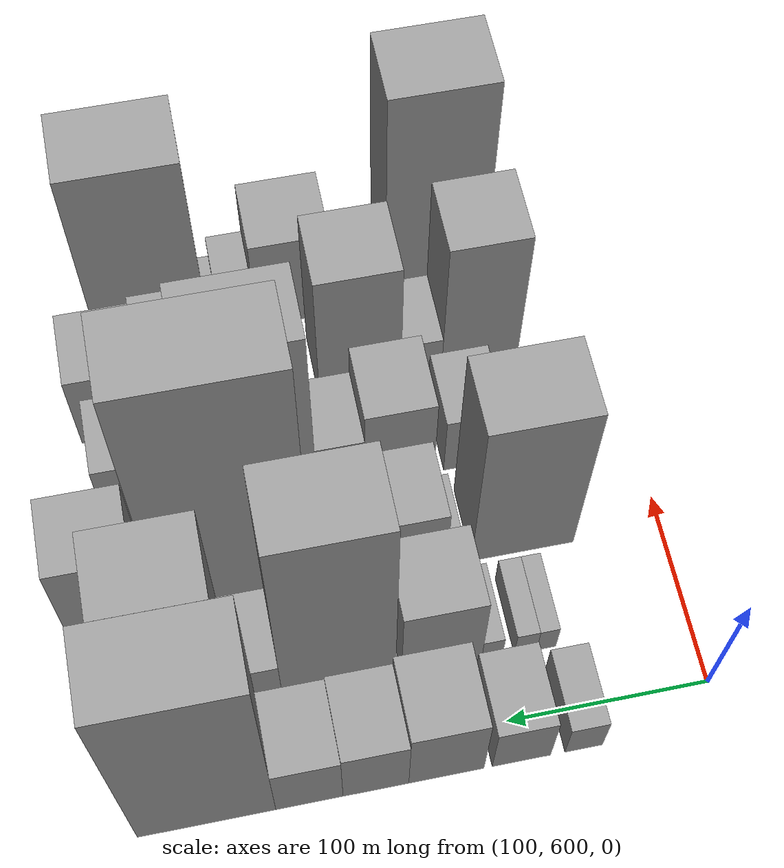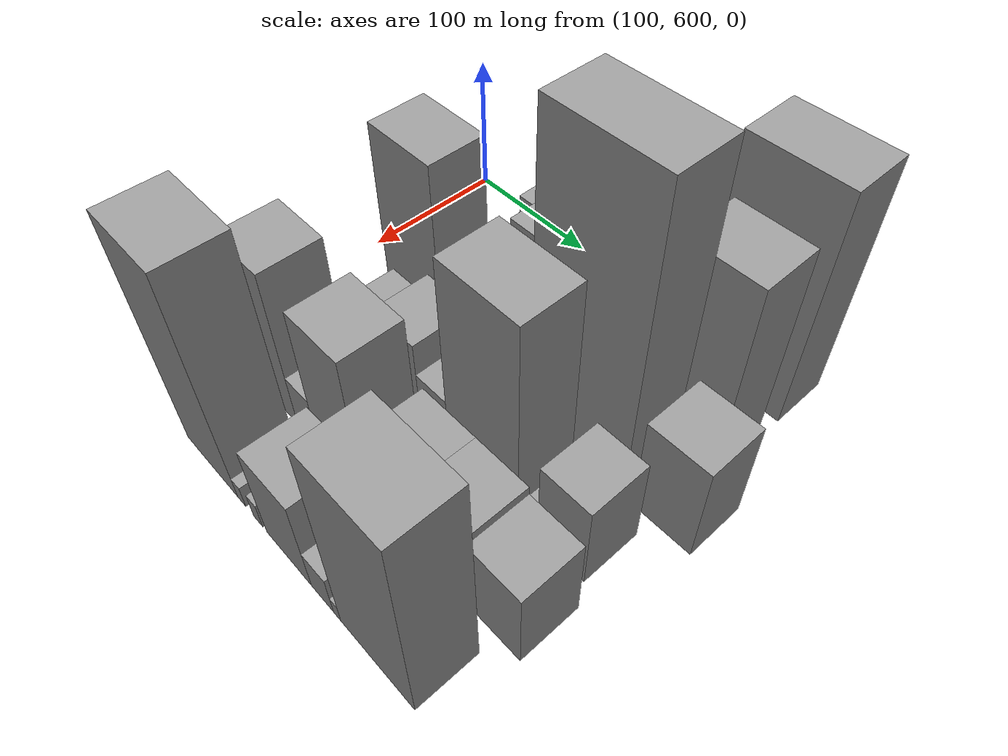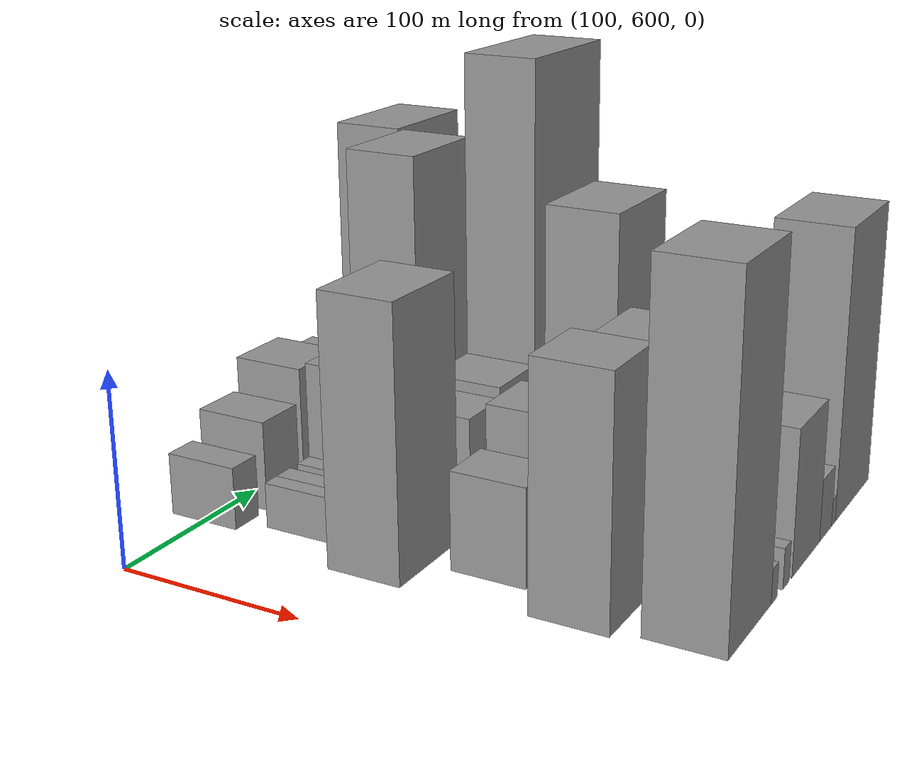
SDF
<sdf version="1.6">
 <world name="default">
  <model name="building_48">
   <static>1</static>
   <pose>100.0000 667.2027 0 0.000000 0.000000 0.000000</pose>
   <link name="link">
    <pose>0 0 16.50 0 0 0</pose>
    <collision name="collision"><geometry><box><size>40.0000 18.4036 33.0000</size></box></geometry></collision>
    <visual name="visual">
     <cast_shadows>0</cast_shadows>
     <geometry><box><size>40.0000 18.4036 33.0000</size></box></geometry>
     <material>
      <script>
       <uri>model://grey_wall/materials/scripts</uri>
       <uri>model://grey_wall/materials/textures</uri>
       <name>vrc/grey_wall</name>
      </script>
     </material>
    </visual>
   </link>
  </model>
  <model name="building_49">
   <static>1</static>
   <pose>100.0000 697.5780 0 0.000000 0.000000 0.000000</pose>
   <link name="link">
    <pose>0 0 24.00 0 0 0</pose>
    <collision name="collision"><geometry><box><size>40.0000 28.3470 48.0000</size></box></geometry></collision>
    <visual name="visual">
     <cast_shadows>0</cast_shadows>
     <geometry><box><size>40.0000 28.3470 48.0000</size></box></geometry>
     <material>
      <script>
       <uri>model://grey_wall/materials/scripts</uri>
       <uri>model://grey_wall/materials/textures</uri>
       <name>vrc/grey_wall</name>
      </script>
     </material>
    </visual>
   </link>
  </model>
  <model name="building_50">
   <static>1</static>
   <pose>100.0000 733.8531 0 0.000000 0.000000 0.000000</pose>
   <link name="link">
    <pose>0 0 33.00 0 0 0</pose>
    <collision name="collision"><geometry><box><size>40.0000 36.2032 66.0000</size></box></geometry></collision>
    <visual name="visual">
     <cast_shadows>0</cast_shadows>
     <geometry><box><size>40.0000 36.2032 66.0000</size></box></geometry>
     <material>
      <script>
       <uri>model://grey_wall/materials/scripts</uri>
       <uri>model://grey_wall/materials/textures</uri>
       <name>vrc/grey_wall</name>
      </script>
     </material>
    </visual>
   </link>
  </model>
  <model name="building_51">
   <static>1</static>
   <pose>100.0000 767.6744 0 0.000000 0.000000 0.000000</pose>
   <link name="link">
    <pose>0 0 28.50 0 0 0</pose>
    <collision name="collision"><geometry><box><size>40.0000 31.4392 57.0000</size></box></geometry></collision>
    <visual name="visual">
     <cast_shadows>0</cast_shadows>
     <geometry><box><size>40.0000 31.4392 57.0000</size></box></geometry>
     <material>
      <script>
       <uri>model://grey_wall/materials/scripts</uri>
       <uri>model://grey_wall/materials/textures</uri>
       <name>vrc/grey_wall</name>
      </script>
     </material>
    </visual>
   </link>
  </model>
  <model name="building_52">
   <static>1</static>
   <pose>100.0000 799.3085 0 0.000000 0.000000 0.000000</pose>
   <link name="link">
    <pose>0 0 27.00 0 0 0</pose>
    <collision name="collision"><geometry><box><size>40.0000 31.8290 54.0000</size></box></geometry></collision>
    <visual name="visual">
     <cast_shadows>0</cast_shadows>
     <geometry><box><size>40.0000 31.8290 54.0000</size></box></geometry>
     <material>
      <script>
       <uri>model://grey_wall/materials/scripts</uri>
       <uri>model://grey_wall/materials/textures</uri>
       <name>vrc/grey_wall</name>
      </script>
     </material>
    </visual>
   </link>
  </model>
  <model name="building_53">
   <static>1</static>
   <pose>100.0000 847.6762 0 0.000000 0.000000 0.000000</pose>
   <link name="link">
    <pose>0 0 87.00 0 0 0</pose>
    <collision name="collision"><geometry><box><size>40.0000 64.9065 174.0000</size></box></geometry></collision>
    <visual name="visual">
     <cast_shadows>0</cast_shadows>
     <geometry><box><size>40.0000 64.9065 174.0000</size></box></geometry>
     <material>
      <script>
       <uri>model://grey_wall/materials/scripts</uri>
       <uri>model://grey_wall/materials/textures</uri>
       <name>vrc/grey_wall</name>
      </script>
     </material>
    </visual>
   </link>
  </model>
  <model name="building_96">
   <static>1</static>
   <pose>152.0000 672.4310 0 0.000000 0.000000 0.000000</pose>
   <link name="link">
    <pose>0 0 12.00 0 0 0</pose>
    <collision name="collision"><geometry><box><size>40.0000 9.6453 24.0000</size></box></geometry></collision>
    <visual name="visual">
     <cast_shadows>0</cast_shadows>
     <geometry><box><size>40.0000 9.6453 24.0000</size></box></geometry>
     <material>
      <script>
       <uri>model://grey_wall/materials/scripts</uri>
       <uri>model://grey_wall/materials/textures</uri>
       <name>vrc/grey_wall</name>
      </script>
     </material>
    </visual>
   </link>
  </model>
  <model name="building_97">
   <static>1</static>
   <pose>152.0000 682.8885 0 0.000000 0.000000 0.000000</pose>
   <link name="link">
    <pose>0 0 12.00 0 0 0</pose>
    <collision name="collision"><geometry><box><size>40.0000 11.2697 24.0000</size></box></geometry></collision>
    <visual name="visual">
     <cast_shadows>0</cast_shadows>
     <geometry><box><size>40.0000 11.2697 24.0000</size></box></geometry>
     <material>
      <script>
       <uri>model://grey_wall/materials/scripts</uri>
       <uri>model://grey_wall/materials/textures</uri>
       <name>vrc/grey_wall</name>
      </script>
     </material>
    </visual>
   </link>
  </model>
  <model name="building_98">
   <static>1</static>
   <pose>152.0000 699.7544 0 0.000000 0.000000 0.000000</pose>
   <link name="link">
    <pose>0 0 12.00 0 0 0</pose>
    <collision name="collision"><geometry><box><size>40.0000 10.4621 24.0000</size></box></geometry></collision>
    <visual name="visual">
     <cast_shadows>0</cast_shadows>
     <geometry><box><size>40.0000 10.4621 24.0000</size></box></geometry>
     <material>
      <script>
       <uri>model://grey_wall/materials/scripts</uri>
       <uri>model://grey_wall/materials/textures</uri>
       <name>vrc/grey_wall</name>
      </script>
     </material>
    </visual>
   </link>
  </model>
  <model name="building_99">
   <static>1</static>
   <pose>152.0000 724.7930 0 0.000000 0.000000 0.000000</pose>
   <link name="link">
    <pose>0 0 37.50 0 0 0</pose>
    <collision name="collision"><geometry><box><size>40.0000 39.6151 75.0000</size></box></geometry></collision>
    <visual name="visual">
     <cast_shadows>0</cast_shadows>
     <geometry><box><size>40.0000 39.6151 75.0000</size></box></geometry>
     <material>
      <script>
       <uri>model://grey_wall/materials/scripts</uri>
       <uri>model://grey_wall/materials/textures</uri>
       <name>vrc/grey_wall</name>
      </script>
     </material>
    </visual>
   </link>
  </model>
  <model name="building_100">
   <static>1</static>
   <pose>152.0000 775.2341 0 0.000000 0.000000 0.000000</pose>
   <link name="link">
    <pose>0 0 88.50 0 0 0</pose>
    <collision name="collision"><geometry><box><size>40.0000 55.2671 177.0000</size></box></geometry></collision>
    <visual name="visual">
     <cast_shadows>0</cast_shadows>
     <geometry><box><size>40.0000 55.2671 177.0000</size></box></geometry>
     <material>
      <script>
       <uri>model://grey_wall/materials/scripts</uri>
       <uri>model://grey_wall/materials/textures</uri>
       <name>vrc/grey_wall</name>
      </script>
     </material>
    </visual>
   </link>
  </model>
  <model name="building_101">
   <static>1</static>
   <pose>152.0000 814.1956 0 0.000000 0.000000 0.000000</pose>
   <link name="link">
    <pose>0 0 22.50 0 0 0</pose>
    <collision name="collision"><geometry><box><size>40.0000 22.6560 45.0000</size></box></geometry></collision>
    <visual name="visual">
     <cast_shadows>0</cast_shadows>
     <geometry><box><size>40.0000 22.6560 45.0000</size></box></geometry>
     <material>
      <script>
       <uri>model://grey_wall/materials/scripts</uri>
       <uri>model://grey_wall/materials/textures</uri>
       <name>vrc/grey_wall</name>
      </script>
     </material>
    </visual>
   </link>
  </model>
  <model name="building_102">
   <static>1</static>
   <pose>152.0000 850.6613 0 0.000000 0.000000 0.000000</pose>
   <link name="link">
    <pose>0 0 72.00 0 0 0</pose>
    <collision name="collision"><geometry><box><size>40.0000 50.2754 144.0000</size></box></geometry></collision>
    <visual name="visual">
     <cast_shadows>0</cast_shadows>
     <geometry><box><size>40.0000 50.2754 144.0000</size></box></geometry>
     <material>
      <script>
       <uri>model://grey_wall/materials/scripts</uri>
       <uri>model://grey_wall/materials/textures</uri>
       <name>vrc/grey_wall</name>
      </script>
     </material>
    </visual>
   </link>
  </model>
  <model name="building_147">
   <static>1</static>
   <pose>204.0000 671.6703 0 0.000000 0.000000 0.000000</pose>
   <link name="link">
    <pose>0 0 69.00 0 0 0</pose>
    <collision name="collision"><geometry><box><size>40.0000 52.6367 138.0000</size></box></geometry></collision>
    <visual name="visual">
     <cast_shadows>0</cast_shadows>
     <geometry><box><size>40.0000 52.6367 138.0000</size></box></geometry>
     <material>
      <script>
       <uri>model://grey_wall/materials/scripts</uri>
       <uri>model://grey_wall/materials/textures</uri>
       <name>vrc/grey_wall</name>
      </script>
     </material>
    </visual>
   </link>
  </model>
  <model name="building_148">
   <static>1</static>
   <pose>204.0000 706.4081 0 0.000000 0.000000 0.000000</pose>
   <link name="link">
    <pose>0 0 10.50 0 0 0</pose>
    <collision name="collision"><geometry><box><size>40.0000 8.8390 21.0000</size></box></geometry></collision>
    <visual name="visual">
     <cast_shadows>0</cast_shadows>
     <geometry><box><size>40.0000 8.8390 21.0000</size></box></geometry>
     <material>
      <script>
       <uri>model://grey_wall/materials/scripts</uri>
       <uri>model://grey_wall/materials/textures</uri>
       <name>vrc/grey_wall</name>
      </script>
     </material>
    </visual>
   </link>
  </model>
  <model name="building_149">
   <static>1</static>
   <pose>204.0000 726.1357 0 0.000000 0.000000 0.000000</pose>
   <link name="link">
    <pose>0 0 30.00 0 0 0</pose>
    <collision name="collision"><geometry><box><size>40.0000 30.6161 60.0000</size></box></geometry></collision>
    <visual name="visual">
     <cast_shadows>0</cast_shadows>
     <geometry><box><size>40.0000 30.6161 60.0000</size></box></geometry>
     <material>
      <script>
       <uri>model://grey_wall/materials/scripts</uri>
       <uri>model://grey_wall/materials/textures</uri>
       <name>vrc/grey_wall</name>
      </script>
     </material>
    </visual>
   </link>
  </model>
  <model name="building_150">
   <static>1</static>
   <pose>204.0000 759.9601 0 0.000000 0.000000 0.000000</pose>
   <link name="link">
    <pose>0 0 33.00 0 0 0</pose>
    <collision name="collision"><geometry><box><size>40.0000 37.0328 66.0000</size></box></geometry></collision>
    <visual name="visual">
     <cast_shadows>0</cast_shadows>
     <geometry><box><size>40.0000 37.0328 66.0000</size></box></geometry>
     <material>
      <script>
       <uri>model://grey_wall/materials/scripts</uri>
       <uri>model://grey_wall/materials/textures</uri>
       <name>vrc/grey_wall</name>
      </script>
     </material>
    </visual>
   </link>
  </model>
  <model name="building_151">
   <static>1</static>
   <pose>204.0000 815.7794 0 0.000000 0.000000 0.000000</pose>
   <link name="link">
    <pose>0 0 112.50 0 0 0</pose>
    <collision name="collision"><geometry><box><size>40.0000 74.6058 225.0000</size></box></geometry></collision>
    <visual name="visual">
     <cast_shadows>0</cast_shadows>
     <geometry><box><size>40.0000 74.6058 225.0000</size></box></geometry>
     <material>
      <script>
       <uri>model://grey_wall/materials/scripts</uri>
       <uri>model://grey_wall/materials/textures</uri>
       <name>vrc/grey_wall</name>
      </script>
     </material>
    </visual>
   </link>
  </model>
  <model name="building_152">
   <static>1</static>
   <pose>204.0000 880.4731 0 0.000000 0.000000 0.000000</pose>
   <link name="link">
    <pose>0 0 37.50 0 0 0</pose>
    <collision name="collision"><geometry><box><size>40.0000 40.7817 75.0000</size></box></geometry></collision>
    <visual name="visual">
     <cast_shadows>0</cast_shadows>
     <geometry><box><size>40.0000 40.7817 75.0000</size></box></geometry>
     <material>
      <script>
       <uri>model://grey_wall/materials/scripts</uri>
       <uri>model://grey_wall/materials/textures</uri>
       <name>vrc/grey_wall</name>
      </script>
     </material>
    </visual>
   </link>
  </model>
  <model name="building_201">
   <static>1</static>
   <pose>256.0000 685.9602 0 0.000000 0.000000 0.000000</pose>
   <link name="link">
    <pose>0 0 25.50 0 0 0</pose>
    <collision name="collision"><geometry><box><size>40.0000 29.6811 51.0000</size></box></geometry></collision>
    <visual name="visual">
     <cast_shadows>0</cast_shadows>
     <geometry><box><size>40.0000 29.6811 51.0000</size></box></geometry>
     <material>
      <script>
       <uri>model://grey_wall/materials/scripts</uri>
       <uri>model://grey_wall/materials/textures</uri>
       <name>vrc/grey_wall</name>
      </script>
     </material>
    </visual>
   </link>
  </model>
  <model name="building_202">
   <static>1</static>
   <pose>256.0000 723.8553 0 0.000000 0.000000 0.000000</pose>
   <link name="link">
    <pose>0 0 36.00 0 0 0</pose>
    <collision name="collision"><geometry><box><size>40.0000 36.1089 72.0000</size></box></geometry></collision>
    <visual name="visual">
     <cast_shadows>0</cast_shadows>
     <geometry><box><size>40.0000 36.1089 72.0000</size></box></geometry>
     <material>
      <script>
       <uri>model://grey_wall/materials/scripts</uri>
       <uri>model://grey_wall/materials/textures</uri>
       <name>vrc/grey_wall</name>
      </script>
     </material>
    </visual>
   </link>
  </model>
  <model name="building_203">
   <static>1</static>
   <pose>256.0000 754.4580 0 0.000000 0.000000 0.000000</pose>
   <link name="link">
    <pose>0 0 24.00 0 0 0</pose>
    <collision name="collision"><geometry><box><size>40.0000 25.0965 48.0000</size></box></geometry></collision>
    <visual name="visual">
     <cast_shadows>0</cast_shadows>
     <geometry><box><size>40.0000 25.0965 48.0000</size></box></geometry>
     <material>
      <script>
       <uri>model://grey_wall/materials/scripts</uri>
       <uri>model://grey_wall/materials/textures</uri>
       <name>vrc/grey_wall</name>
      </script>
     </material>
    </visual>
   </link>
  </model>
  <model name="building_204">
   <static>1</static>
   <pose>256.0000 795.5773 0 0.000000 0.000000 0.000000</pose>
   <link name="link">
    <pose>0 0 78.00 0 0 0</pose>
    <collision name="collision"><geometry><box><size>40.0000 57.1422 156.0000</size></box></geometry></collision>
    <visual name="visual">
     <cast_shadows>0</cast_shadows>
     <geometry><box><size>40.0000 57.1422 156.0000</size></box></geometry>
     <material>
      <script>
       <uri>model://grey_wall/materials/scripts</uri>
       <uri>model://grey_wall/materials/textures</uri>
       <name>vrc/grey_wall</name>
      </script>
     </material>
    </visual>
   </link>
  </model>
  <model name="building_205">
   <static>1</static>
   <pose>256.0000 833.6754 0 0.000000 0.000000 0.000000</pose>
   <link name="link">
    <pose>0 0 12.00 0 0 0</pose>
    <collision name="collision"><geometry><box><size>40.0000 11.0541 24.0000</size></box></geometry></collision>
    <visual name="visual">
     <cast_shadows>0</cast_shadows>
     <geometry><box><size>40.0000 11.0541 24.0000</size></box></geometry>
     <material>
      <script>
       <uri>model://grey_wall/materials/scripts</uri>
       <uri>model://grey_wall/materials/textures</uri>
       <name>vrc/grey_wall</name>
      </script>
     </material>
    </visual>
   </link>
  </model>
  <model name="building_206">
   <static>1</static>
   <pose>256.0000 856.5411 0 0.000000 0.000000 0.000000</pose>
   <link name="link">
    <pose>0 0 33.00 0 0 0</pose>
    <collision name="collision"><geometry><box><size>40.0000 34.6773 66.0000</size></box></geometry></collision>
    <visual name="visual">
     <cast_shadows>0</cast_shadows>
     <geometry><box><size>40.0000 34.6773 66.0000</size></box></geometry>
     <material>
      <script>
       <uri>model://grey_wall/materials/scripts</uri>
       <uri>model://grey_wall/materials/textures</uri>
       <name>vrc/grey_wall</name>
      </script>
     </material>
    </visual>
   </link>
  </model>
  <model name="building_248">
   <static>1</static>
   <pose>308.0000 670.4955 0 0.000000 0.000000 0.000000</pose>
   <link name="link">
    <pose>0 0 61.50 0 0 0</pose>
    <collision name="collision"><geometry><box><size>40.0000 40.6894 123.0000</size></box></geometry></collision>
    <visual name="visual">
     <cast_shadows>0</cast_shadows>
     <geometry><box><size>40.0000 40.6894 123.0000</size></box></geometry>
     <material>
      <script>
       <uri>model://grey_wall/materials/scripts</uri>
       <uri>model://grey_wall/materials/textures</uri>
       <name>vrc/grey_wall</name>
      </script>
     </material>
    </visual>
   </link>
  </model>
  <model name="building_249">
   <static>1</static>
   <pose>308.0000 701.7161 0 0.000000 0.000000 0.000000</pose>
   <link name="link">
    <pose>0 0 21.00 0 0 0</pose>
    <collision name="collision"><geometry><box><size>40.0000 21.7518 42.0000</size></box></geometry></collision>
    <visual name="visual">
     <cast_shadows>0</cast_shadows>
     <geometry><box><size>40.0000 21.7518 42.0000</size></box></geometry>
     <material>
      <script>
       <uri>model://grey_wall/materials/scripts</uri>
       <uri>model://grey_wall/materials/textures</uri>
       <name>vrc/grey_wall</name>
      </script>
     </material>
    </visual>
   </link>
  </model>
  <model name="building_250">
   <static>1</static>
   <pose>308.0000 734.3575 0 0.000000 0.000000 0.000000</pose>
   <link name="link">
    <pose>0 0 57.00 0 0 0</pose>
    <collision name="collision"><geometry><box><size>40.0000 43.5310 114.0000</size></box></geometry></collision>
    <visual name="visual">
     <cast_shadows>0</cast_shadows>
     <geometry><box><size>40.0000 43.5310 114.0000</size></box></geometry>
     <material>
      <script>
       <uri>model://grey_wall/materials/scripts</uri>
       <uri>model://grey_wall/materials/textures</uri>
       <name>vrc/grey_wall</name>
      </script>
     </material>
    </visual>
   </link>
  </model>
  <model name="building_251">
   <static>1</static>
   <pose>308.0000 785.6927 0 0.000000 0.000000 0.000000</pose>
   <link name="link">
    <pose>0 0 34.50 0 0 0</pose>
    <collision name="collision"><geometry><box><size>40.0000 41.1392 69.0000</size></box></geometry></collision>
    <visual name="visual">
     <cast_shadows>0</cast_shadows>
     <geometry><box><size>40.0000 41.1392 69.0000</size></box></geometry>
     <material>
      <script>
       <uri>model://grey_wall/materials/scripts</uri>
       <uri>model://grey_wall/materials/textures</uri>
       <name>vrc/grey_wall</name>
      </script>
     </material>
    </visual>
   </link>
  </model>
  <model name="building_252">
   <static>1</static>
   <pose>308.0000 825.3626 0 0.000000 0.000000 0.000000</pose>
   <link name="link">
    <pose>0 0 34.50 0 0 0</pose>
    <collision name="collision"><geometry><box><size>40.0000 38.2006 69.0000</size></box></geometry></collision>
    <visual name="visual">
     <cast_shadows>0</cast_shadows>
     <geometry><box><size>40.0000 38.2006 69.0000</size></box></geometry>
     <material>
      <script>
       <uri>model://grey_wall/materials/scripts</uri>
       <uri>model://grey_wall/materials/textures</uri>
       <name>vrc/grey_wall</name>
      </script>
     </material>
    </visual>
   </link>
  </model>
  <model name="building_253">
   <static>1</static>
   <pose>308.0000 863.0843 0 0.000000 0.000000 0.000000</pose>
   <link name="link">
    <pose>0 0 31.50 0 0 0</pose>
    <collision name="collision"><geometry><box><size>40.0000 37.2428 63.0000</size></box></geometry></collision>
    <visual name="visual">
     <cast_shadows>0</cast_shadows>
     <geometry><box><size>40.0000 37.2428 63.0000</size></box></geometry>
     <material>
      <script>
       <uri>model://grey_wall/materials/scripts</uri>
       <uri>model://grey_wall/materials/textures</uri>
       <name>vrc/grey_wall</name>
      </script>
     </material>
    </visual>
   </link>
  </model>
  <model name="building_298">
   <static>1</static>
   <pose>360.0000 683.2698 0 0.000000 0.000000 0.000000</pose>
   <link name="link">
    <pose>0 0 87.00 0 0 0</pose>
    <collision name="collision"><geometry><box><size>40.0000 54.0060 174.0000</size></box></geometry></collision>
    <visual name="visual">
     <cast_shadows>0</cast_shadows>
     <geometry><box><size>40.0000 54.0060 174.0000</size></box></geometry>
     <material>
      <script>
       <uri>model://grey_wall/materials/scripts</uri>
       <uri>model://grey_wall/materials/textures</uri>
       <name>vrc/grey_wall</name>
      </script>
     </material>
    </visual>
   </link>
  </model>
  <model name="building_299">
   <static>1</static>
   <pose>360.0000 714.3345 0 0.000000 0.000000 0.000000</pose>
   <link name="link">
    <pose>0 0 9.00 0 0 0</pose>
    <collision name="collision"><geometry><box><size>40.0000 8.1234 18.0000</size></box></geometry></collision>
    <visual name="visual">
     <cast_shadows>0</cast_shadows>
     <geometry><box><size>40.0000 8.1234 18.0000</size></box></geometry>
     <material>
      <script>
       <uri>model://grey_wall/materials/scripts</uri>
       <uri>model://grey_wall/materials/textures</uri>
       <name>vrc/grey_wall</name>
      </script>
     </material>
    </visual>
   </link>
  </model>
  <model name="building_300">
   <static>1</static>
   <pose>360.0000 730.8261 0 0.000000 0.000000 0.000000</pose>
   <link name="link">
    <pose>0 0 10.50 0 0 0</pose>
    <collision name="collision"><geometry><box><size>40.0000 8.8599 21.0000</size></box></geometry></collision>
    <visual name="visual">
     <cast_shadows>0</cast_shadows>
     <geometry><box><size>40.0000 8.8599 21.0000</size></box></geometry>
     <material>
      <script>
       <uri>model://grey_wall/materials/scripts</uri>
       <uri>model://grey_wall/materials/textures</uri>
       <name>vrc/grey_wall</name>
      </script>
     </material>
    </visual>
   </link>
  </model>
  <model name="building_301">
   <static>1</static>
   <pose>360.0000 760.1411 0 0.000000 0.000000 0.000000</pose>
   <link name="link">
    <pose>0 0 37.50 0 0 0</pose>
    <collision name="collision"><geometry><box><size>40.0000 41.7701 75.0000</size></box></geometry></collision>
    <visual name="visual">
     <cast_shadows>0</cast_shadows>
     <geometry><box><size>40.0000 41.7701 75.0000</size></box></geometry>
     <material>
      <script>
       <uri>model://grey_wall/materials/scripts</uri>
       <uri>model://grey_wall/materials/textures</uri>
       <name>vrc/grey_wall</name>
      </script>
     </material>
    </visual>
   </link>
  </model>
  <model name="building_302">
   <static>1</static>
   <pose>360.0000 790.6929 0 0.000000 0.000000 0.000000</pose>
   <link name="link">
    <pose>0 0 16.50 0 0 0</pose>
    <collision name="collision"><geometry><box><size>40.0000 19.3336 33.0000</size></box></geometry></collision>
    <visual name="visual">
     <cast_shadows>0</cast_shadows>
     <geometry><box><size>40.0000 19.3336 33.0000</size></box></geometry>
     <material>
      <script>
       <uri>model://grey_wall/materials/scripts</uri>
       <uri>model://grey_wall/materials/textures</uri>
       <name>vrc/grey_wall</name>
      </script>
     </material>
    </visual>
   </link>
  </model>
  <model name="building_303">
   <static>1</static>
   <pose>360.0000 803.4122 0 0.000000 0.000000 0.000000</pose>
   <link name="link">
    <pose>0 0 7.50 0 0 0</pose>
    <collision name="collision"><geometry><box><size>40.0000 6.1050 15.0000</size></box></geometry></collision>
    <visual name="visual">
     <cast_shadows>0</cast_shadows>
     <geometry><box><size>40.0000 6.1050 15.0000</size></box></geometry>
     <material>
      <script>
       <uri>model://grey_wall/materials/scripts</uri>
       <uri>model://grey_wall/materials/textures</uri>
       <name>vrc/grey_wall</name>
      </script>
     </material>
    </visual>
   </link>
  </model>
  <model name="building_304">
   <static>1</static>
   <pose>360.0000 835.9484 0 0.000000 0.000000 0.000000</pose>
   <link name="link">
    <pose>0 0 76.50 0 0 0</pose>
    <collision name="collision"><geometry><box><size>40.0000 58.9673 153.0000</size></box></geometry></collision>
    <visual name="visual">
     <cast_shadows>0</cast_shadows>
     <geometry><box><size>40.0000 58.9673 153.0000</size></box></geometry>
     <material>
      <script>
       <uri>model://grey_wall/materials/scripts</uri>
       <uri>model://grey_wall/materials/textures</uri>
       <name>vrc/grey_wall</name>
      </script>
     </material>
    </visual>
   </link>
  </model>
 </world>
</sdf>
